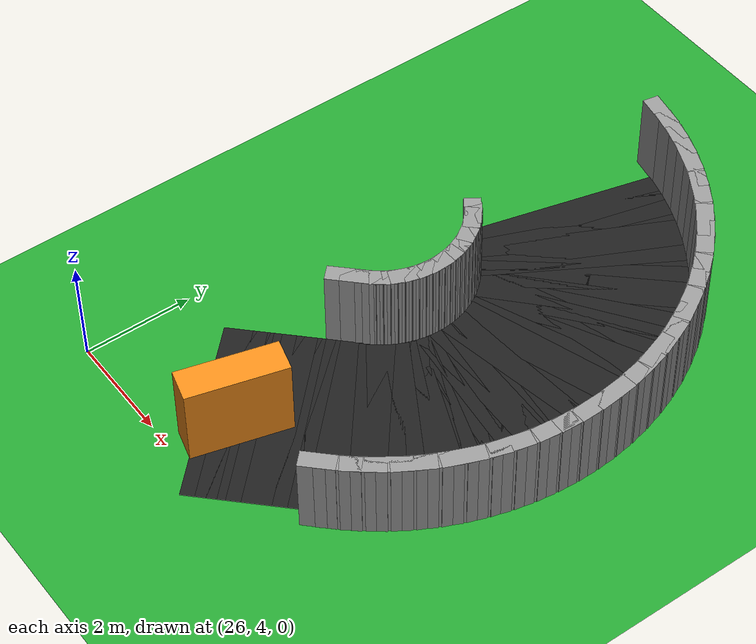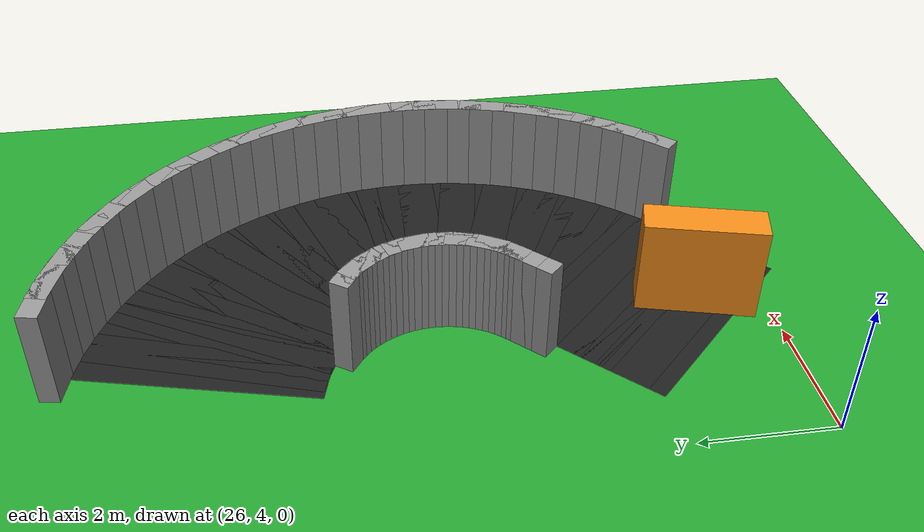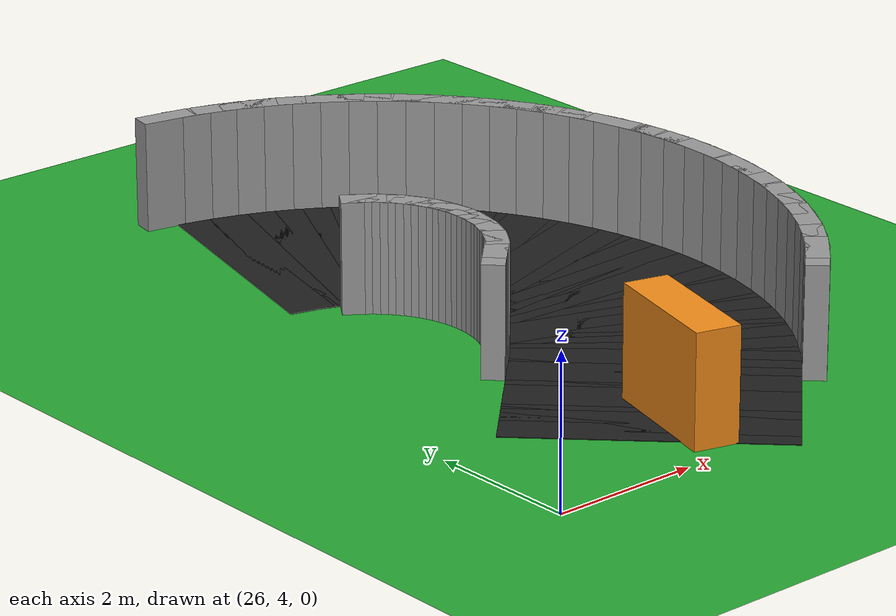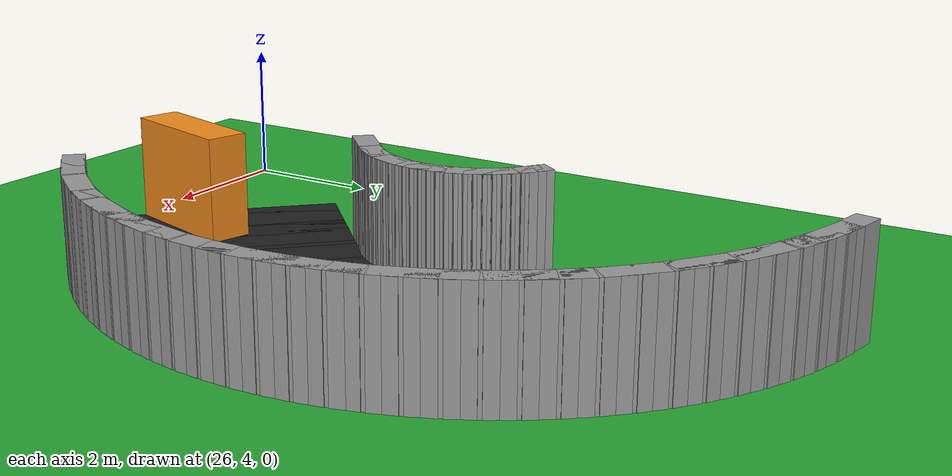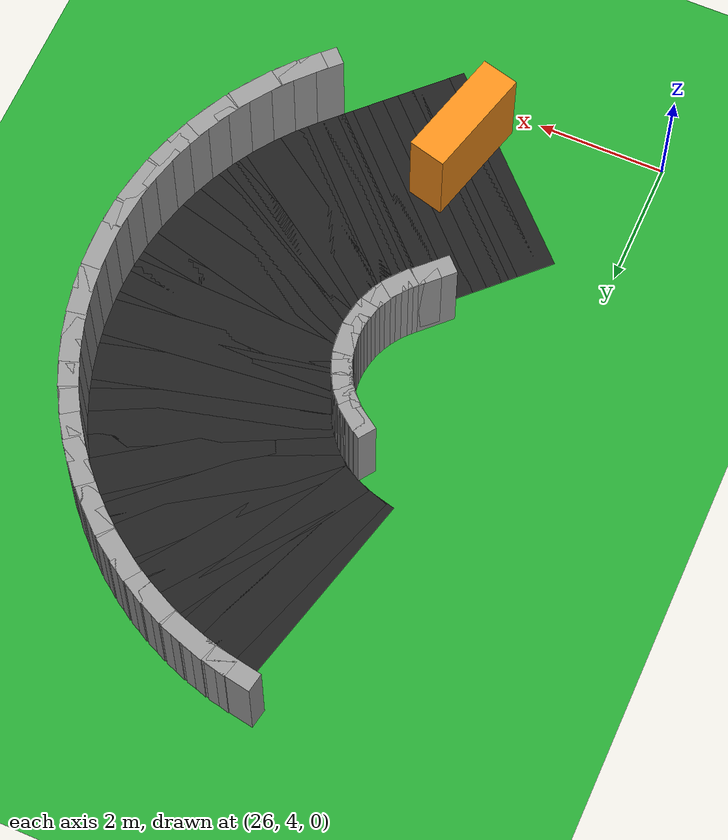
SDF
<sdf version="1.6">
 <world name="obstacle_tight">
  <include><uri>model://sun</uri></include>
  <model name="ground_plane">
   <static>true</static>
   <link name="link">
    <collision name="collision">
     <surface><friction><ode><mu>100</mu><mu2>50</mu2></ode></friction></surface>
     <geometry><plane><normal>0 0 1</normal><size>120 120</size></plane></geometry>
    </collision>
    <visual name="visual">
     <geometry><plane><normal>0 0 1</normal><size>120 120</size></plane></geometry>
     <material>
      <script><uri>file://media/materials/scripts/gazebo.material</uri><name>Gazebo/Green</name></script>
     </material>
    </visual>
   </link>
  </model>
  <model name="asphalt_120">
   <static>true</static>
   <pose>28.397 5.083 0.005 0 0 0.78540</pose>
   <link name="link">
    <visual name="visual">
     <geometry><box><size>0.610 3.600 0.010</size></box></geometry>
     <material>
      <script><uri>file://media/materials/scripts/gazebo.material</uri><name>Gazebo/Black</name></script>
     </material>
    </visual>
   </link>
  </model>
  <model name="asphalt_121">
   <static>true</static>
   <pose>28.574 5.260 0.005 0 0 0.78540</pose>
   <link name="link">
    <visual name="visual">
     <geometry><box><size>0.610 3.600 0.010</size></box></geometry>
     <material>
      <script><uri>file://media/materials/scripts/gazebo.material</uri><name>Gazebo/Black</name></script>
     </material>
    </visual>
   </link>
  </model>
  <model name="asphalt_122">
   <static>true</static>
   <pose>28.751 5.437 0.005 0 0 0.78540</pose>
   <link name="link">
    <visual name="visual">
     <geometry><box><size>0.610 3.600 0.010</size></box></geometry>
     <material>
      <script><uri>file://media/materials/scripts/gazebo.material</uri><name>Gazebo/Black</name></script>
     </material>
    </visual>
   </link>
  </model>
  <model name="asphalt_123">
   <static>true</static>
   <pose>28.927 5.614 0.005 0 0 0.78540</pose>
   <link name="link">
    <visual name="visual">
     <geometry><box><size>0.610 3.600 0.010</size></box></geometry>
     <material>
      <script><uri>file://media/materials/scripts/gazebo.material</uri><name>Gazebo/Black</name></script>
     </material>
    </visual>
   </link>
  </model>
  <model name="asphalt_124">
   <static>true</static>
   <pose>29.104 5.790 0.005 0 0 0.78540</pose>
   <link name="link">
    <visual name="visual">
     <geometry><box><size>0.610 3.600 0.010</size></box></geometry>
     <material>
      <script><uri>file://media/materials/scripts/gazebo.material</uri><name>Gazebo/Black</name></script>
     </material>
    </visual>
   </link>
  </model>
  <model name="asphalt_125">
   <static>true</static>
   <pose>29.281 5.967 0.005 0 0 0.78540</pose>
   <link name="link">
    <visual name="visual">
     <geometry><box><size>0.610 3.600 0.010</size></box></geometry>
     <material>
      <script><uri>file://media/materials/scripts/gazebo.material</uri><name>Gazebo/Black</name></script>
     </material>
    </visual>
   </link>
  </model>
  <model name="asphalt_126">
   <static>true</static>
   <pose>29.458 6.144 0.005 0 0 0.78540</pose>
   <link name="link">
    <visual name="visual">
     <geometry><box><size>0.610 3.600 0.010</size></box></geometry>
     <material>
      <script><uri>file://media/materials/scripts/gazebo.material</uri><name>Gazebo/Black</name></script>
     </material>
    </visual>
   </link>
  </model>
  <model name="asphalt_127">
   <static>true</static>
   <pose>29.635 6.321 0.005 0 0 0.78540</pose>
   <link name="link">
    <visual name="visual">
     <geometry><box><size>0.610 3.600 0.010</size></box></geometry>
     <material>
      <script><uri>file://media/materials/scripts/gazebo.material</uri><name>Gazebo/Black</name></script>
     </material>
    </visual>
   </link>
  </model>
  <model name="curbL_127">
   <static>true</static>
   <pose>28.256 7.700 0.750 0 0 0.78540</pose>
   <link name="link">
    <collision name="collision"><geometry><box><size>0.610 0.300 1.500</size></box></geometry></collision>
    <visual name="visual">
     <geometry><box><size>0.610 0.300 1.500</size></box></geometry>
     <material>
      <script><uri>file://media/materials/scripts/gazebo.material</uri><name>Gazebo/Grey</name></script>
     </material>
    </visual>
   </link>
  </model>
  <model name="asphalt_128">
   <static>true</static>
   <pose>29.811 6.497 0.005 0 0 0.78540</pose>
   <link name="link">
    <visual name="visual">
     <geometry><box><size>0.610 3.600 0.010</size></box></geometry>
     <material>
      <script><uri>file://media/materials/scripts/gazebo.material</uri><name>Gazebo/Black</name></script>
     </material>
    </visual>
   </link>
  </model>
  <model name="curbL_128">
   <static>true</static>
   <pose>28.432 7.876 0.750 0 0 0.78540</pose>
   <link name="link">
    <collision name="collision"><geometry><box><size>0.610 0.300 1.500</size></box></geometry></collision>
    <visual name="visual">
     <geometry><box><size>0.610 0.300 1.500</size></box></geometry>
     <material>
      <script><uri>file://media/materials/scripts/gazebo.material</uri><name>Gazebo/Grey</name></script>
     </material>
    </visual>
   </link>
  </model>
  <model name="curbR_128">
   <static>true</static>
   <pose>31.190 5.119 0.750 0 0 0.78540</pose>
   <link name="link">
    <collision name="collision"><geometry><box><size>0.610 0.300 1.500</size></box></geometry></collision>
    <visual name="visual">
     <geometry><box><size>0.610 0.300 1.500</size></box></geometry>
     <material>
      <script><uri>file://media/materials/scripts/gazebo.material</uri><name>Gazebo/Grey</name></script>
     </material>
    </visual>
   </link>
  </model>
  <model name="asphalt_129">
   <static>true</static>
   <pose>29.985 6.677 0.005 0 0 0.82110</pose>
   <link name="link">
    <visual name="visual">
     <geometry><box><size>0.610 3.600 0.010</size></box></geometry>
     <material>
      <script><uri>file://media/materials/scripts/gazebo.material</uri><name>Gazebo/Black</name></script>
     </material>
    </visual>
   </link>
  </model>
  <model name="curbL_129">
   <static>true</static>
   <pose>28.559 8.005 0.750 0 0 0.82110</pose>
   <link name="link">
    <collision name="collision"><geometry><box><size>0.471 0.300 1.500</size></box></geometry></collision>
    <visual name="visual">
     <geometry><box><size>0.471 0.300 1.500</size></box></geometry>
     <material>
      <script><uri>file://media/materials/scripts/gazebo.material</uri><name>Gazebo/Grey</name></script>
     </material>
    </visual>
   </link>
  </model>
  <model name="curbR_129">
   <static>true</static>
   <pose>31.411 5.349 0.750 0 0 0.82110</pose>
   <link name="link">
    <collision name="collision"><geometry><box><size>0.749 0.300 1.500</size></box></geometry></collision>
    <visual name="visual">
     <geometry><box><size>0.749 0.300 1.500</size></box></geometry>
     <material>
      <script><uri>file://media/materials/scripts/gazebo.material</uri><name>Gazebo/Grey</name></script>
     </material>
    </visual>
   </link>
  </model>
  <model name="asphalt_130">
   <static>true</static>
   <pose>30.148 6.866 0.005 0 0 0.89250</pose>
   <link name="link">
    <visual name="visual">
     <geometry><box><size>0.610 3.600 0.010</size></box></geometry>
     <material>
      <script><uri>file://media/materials/scripts/gazebo.material</uri><name>Gazebo/Black</name></script>
     </material>
    </visual>
   </link>
  </model>
  <model name="curbL_130">
   <static>true</static>
   <pose>28.631 8.089 0.750 0 0 0.89250</pose>
   <link name="link">
    <collision name="collision"><geometry><box><size>0.471 0.300 1.500</size></box></geometry></collision>
    <visual name="visual">
     <geometry><box><size>0.471 0.300 1.500</size></box></geometry>
     <material>
      <script><uri>file://media/materials/scripts/gazebo.material</uri><name>Gazebo/Grey</name></script>
     </material>
    </visual>
   </link>
  </model>
  <model name="curbR_130">
   <static>true</static>
   <pose>31.666 5.643 0.750 0 0 0.89250</pose>
   <link name="link">
    <collision name="collision"><geometry><box><size>0.749 0.300 1.500</size></box></geometry></collision>
    <visual name="visual">
     <geometry><box><size>0.749 0.300 1.500</size></box></geometry>
     <material>
      <script><uri>file://media/materials/scripts/gazebo.material</uri><name>Gazebo/Grey</name></script>
     </material>
    </visual>
   </link>
  </model>
  <model name="asphalt_131">
   <static>true</static>
   <pose>30.298 7.066 0.005 0 0 0.96390</pose>
   <link name="link">
    <visual name="visual">
     <geometry><box><size>0.610 3.600 0.010</size></box></geometry>
     <material>
      <script><uri>file://media/materials/scripts/gazebo.material</uri><name>Gazebo/Black</name></script>
     </material>
    </visual>
   </link>
  </model>
  <model name="curbL_131">
   <static>true</static>
   <pose>28.697 8.177 0.750 0 0 0.96390</pose>
   <link name="link">
    <collision name="collision"><geometry><box><size>0.471 0.300 1.500</size></box></geometry></collision>
    <visual name="visual">
     <geometry><box><size>0.471 0.300 1.500</size></box></geometry>
     <material>
      <script><uri>file://media/materials/scripts/gazebo.material</uri><name>Gazebo/Grey</name></script>
     </material>
    </visual>
   </link>
  </model>
  <model name="curbR_131">
   <static>true</static>
   <pose>31.899 5.955 0.750 0 0 0.96390</pose>
   <link name="link">
    <collision name="collision"><geometry><box><size>0.749 0.300 1.500</size></box></geometry></collision>
    <visual name="visual">
     <geometry><box><size>0.749 0.300 1.500</size></box></geometry>
     <material>
      <script><uri>file://media/materials/scripts/gazebo.material</uri><name>Gazebo/Grey</name></script>
     </material>
    </visual>
   </link>
  </model>
  <model name="asphalt_132">
   <static>true</static>
   <pose>30.433 7.276 0.005 0 0 1.03530</pose>
   <link name="link">
    <visual name="visual">
     <geometry><box><size>0.610 3.600 0.010</size></box></geometry>
     <material>
      <script><uri>file://media/materials/scripts/gazebo.material</uri><name>Gazebo/Black</name></script>
     </material>
    </visual>
   </link>
  </model>
  <model name="curbL_132">
   <static>true</static>
   <pose>28.757 8.270 0.750 0 0 1.03530</pose>
   <link name="link">
    <collision name="collision"><geometry><box><size>0.471 0.300 1.500</size></box></geometry></collision>
    <visual name="visual">
     <geometry><box><size>0.471 0.300 1.500</size></box></geometry>
     <material>
      <script><uri>file://media/materials/scripts/gazebo.material</uri><name>Gazebo/Grey</name></script>
     </material>
    </visual>
   </link>
  </model>
  <model name="curbR_132">
   <static>true</static>
   <pose>32.109 6.282 0.750 0 0 1.03530</pose>
   <link name="link">
    <collision name="collision"><geometry><box><size>0.749 0.300 1.500</size></box></geometry></collision>
    <visual name="visual">
     <geometry><box><size>0.749 0.300 1.500</size></box></geometry>
     <material>
      <script><uri>file://media/materials/scripts/gazebo.material</uri><name>Gazebo/Grey</name></script>
     </material>
    </visual>
   </link>
  </model>
  <model name="asphalt_133">
   <static>true</static>
   <pose>30.553 7.495 0.005 0 0 1.10670</pose>
   <link name="link">
    <visual name="visual">
     <geometry><box><size>0.610 3.600 0.010</size></box></geometry>
     <material>
      <script><uri>file://media/materials/scripts/gazebo.material</uri><name>Gazebo/Black</name></script>
     </material>
    </visual>
   </link>
  </model>
  <model name="curbL_133">
   <static>true</static>
   <pose>28.810 8.368 0.750 0 0 1.10670</pose>
   <link name="link">
    <collision name="collision"><geometry><box><size>0.471 0.300 1.500</size></box></geometry></collision>
    <visual name="visual">
     <geometry><box><size>0.471 0.300 1.500</size></box></geometry>
     <material>
      <script><uri>file://media/materials/scripts/gazebo.material</uri><name>Gazebo/Grey</name></script>
     </material>
    </visual>
   </link>
  </model>
  <model name="curbR_133">
   <static>true</static>
   <pose>32.295 6.623 0.750 0 0 1.10670</pose>
   <link name="link">
    <collision name="collision"><geometry><box><size>0.749 0.300 1.500</size></box></geometry></collision>
    <visual name="visual">
     <geometry><box><size>0.749 0.300 1.500</size></box></geometry>
     <material>
      <script><uri>file://media/materials/scripts/gazebo.material</uri><name>Gazebo/Grey</name></script>
     </material>
    </visual>
   </link>
  </model>
  <model name="asphalt_134">
   <static>true</static>
   <pose>30.657 7.722 0.005 0 0 1.17810</pose>
   <link name="link">
    <visual name="visual">
     <geometry><box><size>0.610 3.600 0.010</size></box></geometry>
     <material>
      <script><uri>file://media/materials/scripts/gazebo.material</uri><name>Gazebo/Black</name></script>
     </material>
    </visual>
   </link>
  </model>
  <model name="curbL_134">
   <static>true</static>
   <pose>28.856 8.468 0.750 0 0 1.17810</pose>
   <link name="link">
    <collision name="collision"><geometry><box><size>0.471 0.300 1.500</size></box></geometry></collision>
    <visual name="visual">
     <geometry><box><size>0.471 0.300 1.500</size></box></geometry>
     <material>
      <script><uri>file://media/materials/scripts/gazebo.material</uri><name>Gazebo/Grey</name></script>
     </material>
    </visual>
   </link>
  </model>
  <model name="curbR_134">
   <static>true</static>
   <pose>32.457 6.977 0.750 0 0 1.17810</pose>
   <link name="link">
    <collision name="collision"><geometry><box><size>0.749 0.300 1.500</size></box></geometry></collision>
    <visual name="visual">
     <geometry><box><size>0.749 0.300 1.500</size></box></geometry>
     <material>
      <script><uri>file://media/materials/scripts/gazebo.material</uri><name>Gazebo/Grey</name></script>
     </material>
    </visual>
   </link>
  </model>
  <model name="asphalt_135">
   <static>true</static>
   <pose>30.744 7.956 0.005 0 0 1.24950</pose>
   <link name="link">
    <visual name="visual">
     <geometry><box><size>0.610 3.600 0.010</size></box></geometry>
     <material>
      <script><uri>file://media/materials/scripts/gazebo.material</uri><name>Gazebo/Black</name></script>
     </material>
    </visual>
   </link>
  </model>
  <model name="curbL_135">
   <static>true</static>
   <pose>28.895 8.572 0.750 0 0 1.24950</pose>
   <link name="link">
    <collision name="collision"><geometry><box><size>0.471 0.300 1.500</size></box></geometry></collision>
    <visual name="visual">
     <geometry><box><size>0.471 0.300 1.500</size></box></geometry>
     <material>
      <script><uri>file://media/materials/scripts/gazebo.material</uri><name>Gazebo/Grey</name></script>
     </material>
    </visual>
   </link>
  </model>
  <model name="curbR_135">
   <static>true</static>
   <pose>32.593 7.341 0.750 0 0 1.24950</pose>
   <link name="link">
    <collision name="collision"><geometry><box><size>0.749 0.300 1.500</size></box></geometry></collision>
    <visual name="visual">
     <geometry><box><size>0.749 0.300 1.500</size></box></geometry>
     <material>
      <script><uri>file://media/materials/scripts/gazebo.material</uri><name>Gazebo/Grey</name></script>
     </material>
    </visual>
   </link>
  </model>
  <model name="asphalt_136">
   <static>true</static>
   <pose>30.814 8.196 0.005 0 0 1.32090</pose>
   <link name="link">
    <visual name="visual">
     <geometry><box><size>0.610 3.600 0.010</size></box></geometry>
     <material>
      <script><uri>file://media/materials/scripts/gazebo.material</uri><name>Gazebo/Black</name></script>
     </material>
    </visual>
   </link>
  </model>
  <model name="curbL_136">
   <static>true</static>
   <pose>28.926 8.678 0.750 0 0 1.32090</pose>
   <link name="link">
    <collision name="collision"><geometry><box><size>0.471 0.300 1.500</size></box></geometry></collision>
    <visual name="visual">
     <geometry><box><size>0.471 0.300 1.500</size></box></geometry>
     <material>
      <script><uri>file://media/materials/scripts/gazebo.material</uri><name>Gazebo/Grey</name></script>
     </material>
    </visual>
   </link>
  </model>
  <model name="curbR_136">
   <static>true</static>
   <pose>32.702 7.714 0.750 0 0 1.32090</pose>
   <link name="link">
    <collision name="collision"><geometry><box><size>0.749 0.300 1.500</size></box></geometry></collision>
    <visual name="visual">
     <geometry><box><size>0.749 0.300 1.500</size></box></geometry>
     <material>
      <script><uri>file://media/materials/scripts/gazebo.material</uri><name>Gazebo/Grey</name></script>
     </material>
    </visual>
   </link>
  </model>
  <model name="asphalt_137">
   <static>true</static>
   <pose>30.867 8.440 0.005 0 0 1.39230</pose>
   <link name="link">
    <visual name="visual">
     <geometry><box><size>0.610 3.600 0.010</size></box></geometry>
     <material>
      <script><uri>file://media/materials/scripts/gazebo.material</uri><name>Gazebo/Black</name></script>
     </material>
    </visual>
   </link>
  </model>
  <model name="curbL_137">
   <static>true</static>
   <pose>28.949 8.786 0.750 0 0 1.39230</pose>
   <link name="link">
    <collision name="collision"><geometry><box><size>0.471 0.300 1.500</size></box></geometry></collision>
    <visual name="visual">
     <geometry><box><size>0.471 0.300 1.500</size></box></geometry>
     <material>
      <script><uri>file://media/materials/scripts/gazebo.material</uri><name>Gazebo/Grey</name></script>
     </material>
    </visual>
   </link>
  </model>
  <model name="curbR_137">
   <static>true</static>
   <pose>32.785 8.094 0.750 0 0 1.39230</pose>
   <link name="link">
    <collision name="collision"><geometry><box><size>0.749 0.300 1.500</size></box></geometry></collision>
    <visual name="visual">
     <geometry><box><size>0.749 0.300 1.500</size></box></geometry>
     <material>
      <script><uri>file://media/materials/scripts/gazebo.material</uri><name>Gazebo/Grey</name></script>
     </material>
    </visual>
   </link>
  </model>
  <model name="asphalt_138">
   <static>true</static>
   <pose>30.903 8.687 0.005 0 0 1.46370</pose>
   <link name="link">
    <visual name="visual">
     <geometry><box><size>0.610 3.600 0.010</size></box></geometry>
     <material>
      <script><uri>file://media/materials/scripts/gazebo.material</uri><name>Gazebo/Black</name></script>
     </material>
    </visual>
   </link>
  </model>
  <model name="curbL_138">
   <static>true</static>
   <pose>28.965 8.896 0.750 0 0 1.46370</pose>
   <link name="link">
    <collision name="collision"><geometry><box><size>0.471 0.300 1.500</size></box></geometry></collision>
    <visual name="visual">
     <geometry><box><size>0.471 0.300 1.500</size></box></geometry>
     <material>
      <script><uri>file://media/materials/scripts/gazebo.material</uri><name>Gazebo/Grey</name></script>
     </material>
    </visual>
   </link>
  </model>
  <model name="curbR_138">
   <static>true</static>
   <pose>32.840 8.479 0.750 0 0 1.46370</pose>
   <link name="link">
    <collision name="collision"><geometry><box><size>0.749 0.300 1.500</size></box></geometry></collision>
    <visual name="visual">
     <geometry><box><size>0.749 0.300 1.500</size></box></geometry>
     <material>
      <script><uri>file://media/materials/scripts/gazebo.material</uri><name>Gazebo/Grey</name></script>
     </material>
    </visual>
   </link>
  </model>
  <model name="asphalt_139">
   <static>true</static>
   <pose>30.921 8.936 0.005 0 0 1.53510</pose>
   <link name="link">
    <visual name="visual">
     <geometry><box><size>0.610 3.600 0.010</size></box></geometry>
     <material>
      <script><uri>file://media/materials/scripts/gazebo.material</uri><name>Gazebo/Black</name></script>
     </material>
    </visual>
   </link>
  </model>
  <model name="curbL_139">
   <static>true</static>
   <pose>28.973 9.006 0.750 0 0 1.53510</pose>
   <link name="link">
    <collision name="collision"><geometry><box><size>0.471 0.300 1.500</size></box></geometry></collision>
    <visual name="visual">
     <geometry><box><size>0.471 0.300 1.500</size></box></geometry>
     <material>
      <script><uri>file://media/materials/scripts/gazebo.material</uri><name>Gazebo/Grey</name></script>
     </material>
    </visual>
   </link>
  </model>
  <model name="curbR_139">
   <static>true</static>
   <pose>32.868 8.867 0.750 0 0 1.53510</pose>
   <link name="link">
    <collision name="collision"><geometry><box><size>0.749 0.300 1.500</size></box></geometry></collision>
    <visual name="visual">
     <geometry><box><size>0.749 0.300 1.500</size></box></geometry>
     <material>
      <script><uri>file://media/materials/scripts/gazebo.material</uri><name>Gazebo/Grey</name></script>
     </material>
    </visual>
   </link>
  </model>
  <model name="asphalt_140">
   <static>true</static>
   <pose>30.921 9.186 0.005 0 0 1.60650</pose>
   <link name="link">
    <visual name="visual">
     <geometry><box><size>0.610 3.600 0.010</size></box></geometry>
     <material>
      <script><uri>file://media/materials/scripts/gazebo.material</uri><name>Gazebo/Black</name></script>
     </material>
    </visual>
   </link>
  </model>
  <model name="curbL_140">
   <static>true</static>
   <pose>28.973 9.117 0.750 0 0 1.60650</pose>
   <link name="link">
    <collision name="collision"><geometry><box><size>0.471 0.300 1.500</size></box></geometry></collision>
    <visual name="visual">
     <geometry><box><size>0.471 0.300 1.500</size></box></geometry>
     <material>
      <script><uri>file://media/materials/scripts/gazebo.material</uri><name>Gazebo/Grey</name></script>
     </material>
    </visual>
   </link>
  </model>
  <model name="curbR_140">
   <static>true</static>
   <pose>32.868 9.256 0.750 0 0 1.60650</pose>
   <link name="link">
    <collision name="collision"><geometry><box><size>0.749 0.300 1.500</size></box></geometry></collision>
    <visual name="visual">
     <geometry><box><size>0.749 0.300 1.500</size></box></geometry>
     <material>
      <script><uri>file://media/materials/scripts/gazebo.material</uri><name>Gazebo/Grey</name></script>
     </material>
    </visual>
   </link>
  </model>
  <model name="asphalt_141">
   <static>true</static>
   <pose>30.903 9.435 0.005 0 0 1.67790</pose>
   <link name="link">
    <visual name="visual">
     <geometry><box><size>0.610 3.600 0.010</size></box></geometry>
     <material>
      <script><uri>file://media/materials/scripts/gazebo.material</uri><name>Gazebo/Black</name></script>
     </material>
    </visual>
   </link>
  </model>
  <model name="curbL_141">
   <static>true</static>
   <pose>28.965 9.227 0.750 0 0 1.67790</pose>
   <link name="link">
    <collision name="collision"><geometry><box><size>0.471 0.300 1.500</size></box></geometry></collision>
    <visual name="visual">
     <geometry><box><size>0.471 0.300 1.500</size></box></geometry>
     <material>
      <script><uri>file://media/materials/scripts/gazebo.material</uri><name>Gazebo/Grey</name></script>
     </material>
    </visual>
   </link>
  </model>
  <model name="curbR_141">
   <static>true</static>
   <pose>32.840 9.644 0.750 0 0 1.67790</pose>
   <link name="link">
    <collision name="collision"><geometry><box><size>0.749 0.300 1.500</size></box></geometry></collision>
    <visual name="visual">
     <geometry><box><size>0.749 0.300 1.500</size></box></geometry>
     <material>
      <script><uri>file://media/materials/scripts/gazebo.material</uri><name>Gazebo/Grey</name></script>
     </material>
    </visual>
   </link>
  </model>
  <model name="asphalt_142">
   <static>true</static>
   <pose>30.867 9.682 0.005 0 0 1.74930</pose>
   <link name="link">
    <visual name="visual">
     <geometry><box><size>0.610 3.600 0.010</size></box></geometry>
     <material>
      <script><uri>file://media/materials/scripts/gazebo.material</uri><name>Gazebo/Black</name></script>
     </material>
    </visual>
   </link>
  </model>
  <model name="curbL_142">
   <static>true</static>
   <pose>28.949 9.336 0.750 0 0 1.74930</pose>
   <link name="link">
    <collision name="collision"><geometry><box><size>0.471 0.300 1.500</size></box></geometry></collision>
    <visual name="visual">
     <geometry><box><size>0.471 0.300 1.500</size></box></geometry>
     <material>
      <script><uri>file://media/materials/scripts/gazebo.material</uri><name>Gazebo/Grey</name></script>
     </material>
    </visual>
   </link>
  </model>
  <model name="curbR_142">
   <static>true</static>
   <pose>32.785 10.028 0.750 0 0 1.74930</pose>
   <link name="link">
    <collision name="collision"><geometry><box><size>0.749 0.300 1.500</size></box></geometry></collision>
    <visual name="visual">
     <geometry><box><size>0.749 0.300 1.500</size></box></geometry>
     <material>
      <script><uri>file://media/materials/scripts/gazebo.material</uri><name>Gazebo/Grey</name></script>
     </material>
    </visual>
   </link>
  </model>
  <model name="asphalt_143">
   <static>true</static>
   <pose>30.814 9.926 0.005 0 0 1.82070</pose>
   <link name="link">
    <visual name="visual">
     <geometry><box><size>0.610 3.600 0.010</size></box></geometry>
     <material>
      <script><uri>file://media/materials/scripts/gazebo.material</uri><name>Gazebo/Black</name></script>
     </material>
    </visual>
   </link>
  </model>
  <model name="curbL_143">
   <static>true</static>
   <pose>28.926 9.445 0.750 0 0 1.82070</pose>
   <link name="link">
    <collision name="collision"><geometry><box><size>0.471 0.300 1.500</size></box></geometry></collision>
    <visual name="visual">
     <geometry><box><size>0.471 0.300 1.500</size></box></geometry>
     <material>
      <script><uri>file://media/materials/scripts/gazebo.material</uri><name>Gazebo/Grey</name></script>
     </material>
    </visual>
   </link>
  </model>
  <model name="curbR_143">
   <static>true</static>
   <pose>32.702 10.408 0.750 0 0 1.82070</pose>
   <link name="link">
    <collision name="collision"><geometry><box><size>0.749 0.300 1.500</size></box></geometry></collision>
    <visual name="visual">
     <geometry><box><size>0.749 0.300 1.500</size></box></geometry>
     <material>
      <script><uri>file://media/materials/scripts/gazebo.material</uri><name>Gazebo/Grey</name></script>
     </material>
    </visual>
   </link>
  </model>
  <model name="asphalt_144">
   <static>true</static>
   <pose>30.744 10.166 0.005 0 0 1.89210</pose>
   <link name="link">
    <visual name="visual">
     <geometry><box><size>0.610 3.600 0.010</size></box></geometry>
     <material>
      <script><uri>file://media/materials/scripts/gazebo.material</uri><name>Gazebo/Black</name></script>
     </material>
    </visual>
   </link>
  </model>
  <model name="curbL_144">
   <static>true</static>
   <pose>28.895 9.551 0.750 0 0 1.89210</pose>
   <link name="link">
    <collision name="collision"><geometry><box><size>0.471 0.300 1.500</size></box></geometry></collision>
    <visual name="visual">
     <geometry><box><size>0.471 0.300 1.500</size></box></geometry>
     <material>
      <script><uri>file://media/materials/scripts/gazebo.material</uri><name>Gazebo/Grey</name></script>
     </material>
    </visual>
   </link>
  </model>
  <model name="curbR_144">
   <static>true</static>
   <pose>32.593 10.782 0.750 0 0 1.89210</pose>
   <link name="link">
    <collision name="collision"><geometry><box><size>0.749 0.300 1.500</size></box></geometry></collision>
    <visual name="visual">
     <geometry><box><size>0.749 0.300 1.500</size></box></geometry>
     <material>
      <script><uri>file://media/materials/scripts/gazebo.material</uri><name>Gazebo/Grey</name></script>
     </material>
    </visual>
   </link>
  </model>
  <model name="asphalt_145">
   <static>true</static>
   <pose>30.657 10.400 0.005 0 0 1.96350</pose>
   <link name="link">
    <visual name="visual">
     <geometry><box><size>0.610 3.600 0.010</size></box></geometry>
     <material>
      <script><uri>file://media/materials/scripts/gazebo.material</uri><name>Gazebo/Black</name></script>
     </material>
    </visual>
   </link>
  </model>
  <model name="curbL_145">
   <static>true</static>
   <pose>28.856 9.654 0.750 0 0 1.96350</pose>
   <link name="link">
    <collision name="collision"><geometry><box><size>0.471 0.300 1.500</size></box></geometry></collision>
    <visual name="visual">
     <geometry><box><size>0.471 0.300 1.500</size></box></geometry>
     <material>
      <script><uri>file://media/materials/scripts/gazebo.material</uri><name>Gazebo/Grey</name></script>
     </material>
    </visual>
   </link>
  </model>
  <model name="curbR_145">
   <static>true</static>
   <pose>32.457 11.146 0.750 0 0 1.96350</pose>
   <link name="link">
    <collision name="collision"><geometry><box><size>0.749 0.300 1.500</size></box></geometry></collision>
    <visual name="visual">
     <geometry><box><size>0.749 0.300 1.500</size></box></geometry>
     <material>
      <script><uri>file://media/materials/scripts/gazebo.material</uri><name>Gazebo/Grey</name></script>
     </material>
    </visual>
   </link>
  </model>
  <model name="asphalt_146">
   <static>true</static>
   <pose>30.553 10.627 0.005 0 0 2.03490</pose>
   <link name="link">
    <visual name="visual">
     <geometry><box><size>0.610 3.600 0.010</size></box></geometry>
     <material>
      <script><uri>file://media/materials/scripts/gazebo.material</uri><name>Gazebo/Black</name></script>
     </material>
    </visual>
   </link>
  </model>
  <model name="curbL_146">
   <static>true</static>
   <pose>28.810 9.755 0.750 0 0 2.03490</pose>
   <link name="link">
    <collision name="collision"><geometry><box><size>0.471 0.300 1.500</size></box></geometry></collision>
    <visual name="visual">
     <geometry><box><size>0.471 0.300 1.500</size></box></geometry>
     <material>
      <script><uri>file://media/materials/scripts/gazebo.material</uri><name>Gazebo/Grey</name></script>
     </material>
    </visual>
   </link>
  </model>
  <model name="curbR_146">
   <static>true</static>
   <pose>32.295 11.500 0.750 0 0 2.03490</pose>
   <link name="link">
    <collision name="collision"><geometry><box><size>0.749 0.300 1.500</size></box></geometry></collision>
    <visual name="visual">
     <geometry><box><size>0.749 0.300 1.500</size></box></geometry>
     <material>
      <script><uri>file://media/materials/scripts/gazebo.material</uri><name>Gazebo/Grey</name></script>
     </material>
    </visual>
   </link>
  </model>
  <model name="asphalt_147">
   <static>true</static>
   <pose>30.433 10.846 0.005 0 0 2.10630</pose>
   <link name="link">
    <visual name="visual">
     <geometry><box><size>0.610 3.600 0.010</size></box></geometry>
     <material>
      <script><uri>file://media/materials/scripts/gazebo.material</uri><name>Gazebo/Black</name></script>
     </material>
    </visual>
   </link>
  </model>
  <model name="curbL_147">
   <static>true</static>
   <pose>28.757 9.852 0.750 0 0 2.10630</pose>
   <link name="link">
    <collision name="collision"><geometry><box><size>0.471 0.300 1.500</size></box></geometry></collision>
    <visual name="visual">
     <geometry><box><size>0.471 0.300 1.500</size></box></geometry>
     <material>
      <script><uri>file://media/materials/scripts/gazebo.material</uri><name>Gazebo/Grey</name></script>
     </material>
    </visual>
   </link>
  </model>
  <model name="curbR_147">
   <static>true</static>
   <pose>32.109 11.841 0.750 0 0 2.10630</pose>
   <link name="link">
    <collision name="collision"><geometry><box><size>0.749 0.300 1.500</size></box></geometry></collision>
    <visual name="visual">
     <geometry><box><size>0.749 0.300 1.500</size></box></geometry>
     <material>
      <script><uri>file://media/materials/scripts/gazebo.material</uri><name>Gazebo/Grey</name></script>
     </material>
    </visual>
   </link>
  </model>
  <model name="asphalt_148">
   <static>true</static>
   <pose>30.298 11.057 0.005 0 0 2.17769</pose>
   <link name="link">
    <visual name="visual">
     <geometry><box><size>0.610 3.600 0.010</size></box></geometry>
     <material>
      <script><uri>file://media/materials/scripts/gazebo.material</uri><name>Gazebo/Black</name></script>
     </material>
    </visual>
   </link>
  </model>
  <model name="curbL_148">
   <static>true</static>
   <pose>28.697 9.945 0.750 0 0 2.17769</pose>
   <link name="link">
    <collision name="collision"><geometry><box><size>0.471 0.300 1.500</size></box></geometry></collision>
    <visual name="visual">
     <geometry><box><size>0.471 0.300 1.500</size></box></geometry>
     <material>
      <script><uri>file://media/materials/scripts/gazebo.material</uri><name>Gazebo/Grey</name></script>
     </material>
    </visual>
   </link>
  </model>
  <model name="curbR_148">
   <static>true</static>
   <pose>31.899 12.168 0.750 0 0 2.17769</pose>
   <link name="link">
    <collision name="collision"><geometry><box><size>0.749 0.300 1.500</size></box></geometry></collision>
    <visual name="visual">
     <geometry><box><size>0.749 0.300 1.500</size></box></geometry>
     <material>
      <script><uri>file://media/materials/scripts/gazebo.material</uri><name>Gazebo/Grey</name></script>
     </material>
    </visual>
   </link>
  </model>
  <model name="asphalt_149">
   <static>true</static>
   <pose>30.148 11.256 0.005 0 0 2.24909</pose>
   <link name="link">
    <visual name="visual">
     <geometry><box><size>0.610 3.600 0.010</size></box></geometry>
     <material>
      <script><uri>file://media/materials/scripts/gazebo.material</uri><name>Gazebo/Black</name></script>
     </material>
    </visual>
   </link>
  </model>
  <model name="curbL_149">
   <static>true</static>
   <pose>28.631 10.034 0.750 0 0 2.24909</pose>
   <link name="link">
    <collision name="collision"><geometry><box><size>0.471 0.300 1.500</size></box></geometry></collision>
    <visual name="visual">
     <geometry><box><size>0.471 0.300 1.500</size></box></geometry>
     <material>
      <script><uri>file://media/materials/scripts/gazebo.material</uri><name>Gazebo/Grey</name></script>
     </material>
    </visual>
   </link>
  </model>
  <model name="curbR_149">
   <static>true</static>
   <pose>31.666 12.479 0.750 0 0 2.24909</pose>
   <link name="link">
    <collision name="collision"><geometry><box><size>0.749 0.300 1.500</size></box></geometry></collision>
    <visual name="visual">
     <geometry><box><size>0.749 0.300 1.500</size></box></geometry>
     <material>
      <script><uri>file://media/materials/scripts/gazebo.material</uri><name>Gazebo/Grey</name></script>
     </material>
    </visual>
   </link>
  </model>
  <model name="asphalt_150">
   <static>true</static>
   <pose>29.985 11.445 0.005 0 0 2.32049</pose>
   <link name="link">
    <visual name="visual">
     <geometry><box><size>0.610 3.600 0.010</size></box></geometry>
     <material>
      <script><uri>file://media/materials/scripts/gazebo.material</uri><name>Gazebo/Black</name></script>
     </material>
    </visual>
   </link>
  </model>
  <model name="curbL_150">
   <static>true</static>
   <pose>28.559 10.117 0.750 0 0 2.32049</pose>
   <link name="link">
    <collision name="collision"><geometry><box><size>0.471 0.300 1.500</size></box></geometry></collision>
    <visual name="visual">
     <geometry><box><size>0.471 0.300 1.500</size></box></geometry>
     <material>
      <script><uri>file://media/materials/scripts/gazebo.material</uri><name>Gazebo/Grey</name></script>
     </material>
    </visual>
   </link>
  </model>
  <model name="curbR_150">
   <static>true</static>
   <pose>31.411 12.773 0.750 0 0 2.32049</pose>
   <link name="link">
    <collision name="collision"><geometry><box><size>0.749 0.300 1.500</size></box></geometry></collision>
    <visual name="visual">
     <geometry><box><size>0.749 0.300 1.500</size></box></geometry>
     <material>
      <script><uri>file://media/materials/scripts/gazebo.material</uri><name>Gazebo/Grey</name></script>
     </material>
    </visual>
   </link>
  </model>
  <model name="asphalt_151">
   <static>true</static>
   <pose>29.808 11.622 0.005 0 0 2.39189</pose>
   <link name="link">
    <visual name="visual">
     <geometry><box><size>0.610 3.600 0.010</size></box></geometry>
     <material>
      <script><uri>file://media/materials/scripts/gazebo.material</uri><name>Gazebo/Black</name></script>
     </material>
    </visual>
   </link>
  </model>
  <model name="curbL_151">
   <static>true</static>
   <pose>28.480 10.196 0.750 0 0 2.39189</pose>
   <link name="link">
    <collision name="collision"><geometry><box><size>0.471 0.300 1.500</size></box></geometry></collision>
    <visual name="visual">
     <geometry><box><size>0.471 0.300 1.500</size></box></geometry>
     <material>
      <script><uri>file://media/materials/scripts/gazebo.material</uri><name>Gazebo/Grey</name></script>
     </material>
    </visual>
   </link>
  </model>
  <model name="curbR_151">
   <static>true</static>
   <pose>31.136 13.048 0.750 0 0 2.39189</pose>
   <link name="link">
    <collision name="collision"><geometry><box><size>0.749 0.300 1.500</size></box></geometry></collision>
    <visual name="visual">
     <geometry><box><size>0.749 0.300 1.500</size></box></geometry>
     <material>
      <script><uri>file://media/materials/scripts/gazebo.material</uri><name>Gazebo/Grey</name></script>
     </material>
    </visual>
   </link>
  </model>
  <model name="asphalt_152">
   <static>true</static>
   <pose>29.620 11.785 0.005 0 0 2.46329</pose>
   <link name="link">
    <visual name="visual">
     <geometry><box><size>0.610 3.600 0.010</size></box></geometry>
     <material>
      <script><uri>file://media/materials/scripts/gazebo.material</uri><name>Gazebo/Black</name></script>
     </material>
    </visual>
   </link>
  </model>
  <model name="curbL_152">
   <static>true</static>
   <pose>28.397 10.268 0.750 0 0 2.46329</pose>
   <link name="link">
    <collision name="collision"><geometry><box><size>0.471 0.300 1.500</size></box></geometry></collision>
    <visual name="visual">
     <geometry><box><size>0.471 0.300 1.500</size></box></geometry>
     <material>
      <script><uri>file://media/materials/scripts/gazebo.material</uri><name>Gazebo/Grey</name></script>
     </material>
    </visual>
   </link>
  </model>
  <model name="curbR_152">
   <static>true</static>
   <pose>30.842 13.303 0.750 0 0 2.46329</pose>
   <link name="link">
    <collision name="collision"><geometry><box><size>0.749 0.300 1.500</size></box></geometry></collision>
    <visual name="visual">
     <geometry><box><size>0.749 0.300 1.500</size></box></geometry>
     <material>
      <script><uri>file://media/materials/scripts/gazebo.material</uri><name>Gazebo/Grey</name></script>
     </material>
    </visual>
   </link>
  </model>
  <model name="asphalt_153">
   <static>true</static>
   <pose>29.420 11.935 0.005 0 0 2.53469</pose>
   <link name="link">
    <visual name="visual">
     <geometry><box><size>0.610 3.600 0.010</size></box></geometry>
     <material>
      <script><uri>file://media/materials/scripts/gazebo.material</uri><name>Gazebo/Black</name></script>
     </material>
    </visual>
   </link>
  </model>
  <model name="curbL_153">
   <static>true</static>
   <pose>28.308 10.334 0.750 0 0 2.53469</pose>
   <link name="link">
    <collision name="collision"><geometry><box><size>0.471 0.300 1.500</size></box></geometry></collision>
    <visual name="visual">
     <geometry><box><size>0.471 0.300 1.500</size></box></geometry>
     <material>
      <script><uri>file://media/materials/scripts/gazebo.material</uri><name>Gazebo/Grey</name></script>
     </material>
    </visual>
   </link>
  </model>
  <model name="curbR_153">
   <static>true</static>
   <pose>30.531 13.536 0.750 0 0 2.53469</pose>
   <link name="link">
    <collision name="collision"><geometry><box><size>0.749 0.300 1.500</size></box></geometry></collision>
    <visual name="visual">
     <geometry><box><size>0.749 0.300 1.500</size></box></geometry>
     <material>
      <script><uri>file://media/materials/scripts/gazebo.material</uri><name>Gazebo/Grey</name></script>
     </material>
    </visual>
   </link>
  </model>
  <model name="asphalt_154">
   <static>true</static>
   <pose>29.210 12.070 0.005 0 0 2.60609</pose>
   <link name="link">
    <visual name="visual">
     <geometry><box><size>0.610 3.600 0.010</size></box></geometry>
     <material>
      <script><uri>file://media/materials/scripts/gazebo.material</uri><name>Gazebo/Black</name></script>
     </material>
    </visual>
   </link>
  </model>
  <model name="curbR_154">
   <static>true</static>
   <pose>30.204 13.746 0.750 0 0 2.60609</pose>
   <link name="link">
    <collision name="collision"><geometry><box><size>0.749 0.300 1.500</size></box></geometry></collision>
    <visual name="visual">
     <geometry><box><size>0.749 0.300 1.500</size></box></geometry>
     <material>
      <script><uri>file://media/materials/scripts/gazebo.material</uri><name>Gazebo/Grey</name></script>
     </material>
    </visual>
   </link>
  </model>
  <model name="asphalt_155">
   <static>true</static>
   <pose>28.990 12.190 0.005 0 0 2.67749</pose>
   <link name="link">
    <visual name="visual">
     <geometry><box><size>0.610 3.600 0.010</size></box></geometry>
     <material>
      <script><uri>file://media/materials/scripts/gazebo.material</uri><name>Gazebo/Black</name></script>
     </material>
    </visual>
   </link>
  </model>
  <model name="curbR_155">
   <static>true</static>
   <pose>29.863 13.932 0.750 0 0 2.67749</pose>
   <link name="link">
    <collision name="collision"><geometry><box><size>0.749 0.300 1.500</size></box></geometry></collision>
    <visual name="visual">
     <geometry><box><size>0.749 0.300 1.500</size></box></geometry>
     <material>
      <script><uri>file://media/materials/scripts/gazebo.material</uri><name>Gazebo/Grey</name></script>
     </material>
    </visual>
   </link>
  </model>
  <model name="asphalt_156">
   <static>true</static>
   <pose>28.763 12.293 0.005 0 0 2.74889</pose>
   <link name="link">
    <visual name="visual">
     <geometry><box><size>0.610 3.600 0.010</size></box></geometry>
     <material>
      <script><uri>file://media/materials/scripts/gazebo.material</uri><name>Gazebo/Black</name></script>
     </material>
    </visual>
   </link>
  </model>
  <model name="curbR_156">
   <static>true</static>
   <pose>29.509 14.094 0.750 0 0 2.74889</pose>
   <link name="link">
    <collision name="collision"><geometry><box><size>0.749 0.300 1.500</size></box></geometry></collision>
    <visual name="visual">
     <geometry><box><size>0.749 0.300 1.500</size></box></geometry>
     <material>
      <script><uri>file://media/materials/scripts/gazebo.material</uri><name>Gazebo/Grey</name></script>
     </material>
    </visual>
   </link>
  </model>
  <model name="asphalt_157">
   <static>true</static>
   <pose>28.529 12.381 0.005 0 0 2.82029</pose>
   <link name="link">
    <visual name="visual">
     <geometry><box><size>0.610 3.600 0.010</size></box></geometry>
     <material>
      <script><uri>file://media/materials/scripts/gazebo.material</uri><name>Gazebo/Black</name></script>
     </material>
    </visual>
   </link>
  </model>
  <model name="curbR_157">
   <static>true</static>
   <pose>29.145 14.230 0.750 0 0 2.82029</pose>
   <link name="link">
    <collision name="collision"><geometry><box><size>0.749 0.300 1.500</size></box></geometry></collision>
    <visual name="visual">
     <geometry><box><size>0.749 0.300 1.500</size></box></geometry>
     <material>
      <script><uri>file://media/materials/scripts/gazebo.material</uri><name>Gazebo/Grey</name></script>
     </material>
    </visual>
   </link>
  </model>
  <model name="asphalt_158">
   <static>true</static>
   <pose>28.290 12.451 0.005 0 0 2.89169</pose>
   <link name="link">
    <visual name="visual">
     <geometry><box><size>0.610 3.600 0.010</size></box></geometry>
     <material>
      <script><uri>file://media/materials/scripts/gazebo.material</uri><name>Gazebo/Black</name></script>
     </material>
    </visual>
   </link>
  </model>
  <model name="curbR_158">
   <static>true</static>
   <pose>28.771 14.339 0.750 0 0 2.89169</pose>
   <link name="link">
    <collision name="collision"><geometry><box><size>0.749 0.300 1.500</size></box></geometry></collision>
    <visual name="visual">
     <geometry><box><size>0.749 0.300 1.500</size></box></geometry>
     <material>
      <script><uri>file://media/materials/scripts/gazebo.material</uri><name>Gazebo/Grey</name></script>
     </material>
    </visual>
   </link>
  </model>
  <model name="curbR_159">
   <static>true</static>
   <pose>28.392 14.422 0.750 0 0 2.96309</pose>
   <link name="link">
    <collision name="collision"><geometry><box><size>0.749 0.300 1.500</size></box></geometry></collision>
    <visual name="visual">
     <geometry><box><size>0.749 0.300 1.500</size></box></geometry>
     <material>
      <script><uri>file://media/materials/scripts/gazebo.material</uri><name>Gazebo/Grey</name></script>
     </material>
    </visual>
   </link>
  </model>
  <model name="obs_3">
   <static>true</static>
   <pose>28.886 5.077 0.750 0 0 1.30900</pose>
   <link name="link">
    <collision name="collision"><geometry><box><size>1.800 0.600 1.500</size></box></geometry></collision>
    <visual name="visual">
     <geometry><box><size>1.800 0.600 1.500</size></box></geometry>
     <material>
      <script><uri>file://media/materials/scripts/gazebo.material</uri><name>Gazebo/Orange</name></script>
     </material>
    </visual>
   </link>
  </model>
 </world>
</sdf>
